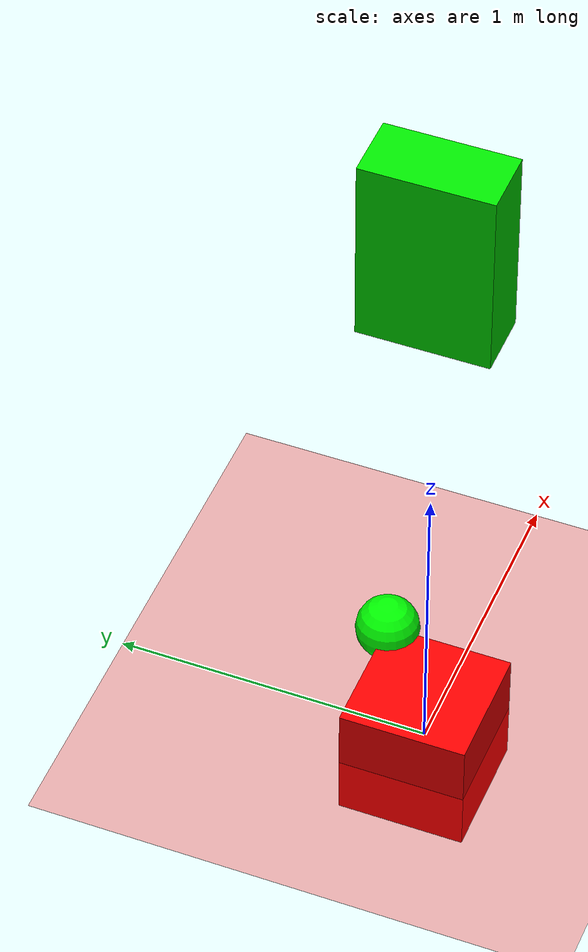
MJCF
<mujoco>
  <option gravity ="0 0 -9.8" timestep="0.00005"/>

  <worldbody>
    <light diffuse=".5 .5 .5" pos="0 0 3" dir="0 0 -1"/>
    <geom name="red_box" type="box" size=".2 .2 .2" rgba="1 0 0 1"/>
    <geom name="green_sphere" pos=".2 .2 .2" size=".1" rgba="0 1 0 1"/>
    <geom type="plane" size="1 1 0.1" rgba=".9 0 0 1"/>

    <body name="float_body" pos="0 0 2">
      <joint type="free"/>
      <geom  type="box" size=".1 .2 .3" rgba="0 .9 0 1" mass = "1"/>
    </body>
  </worldbody>
</mujoco>
